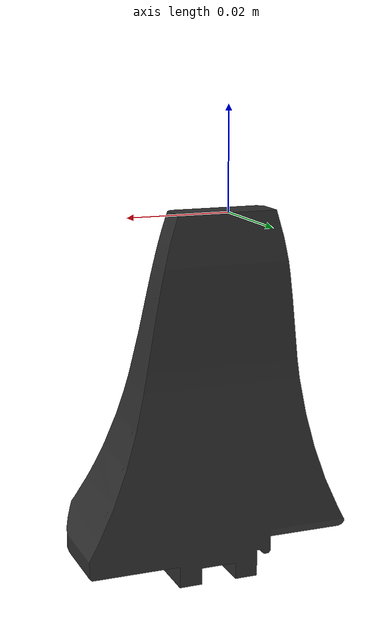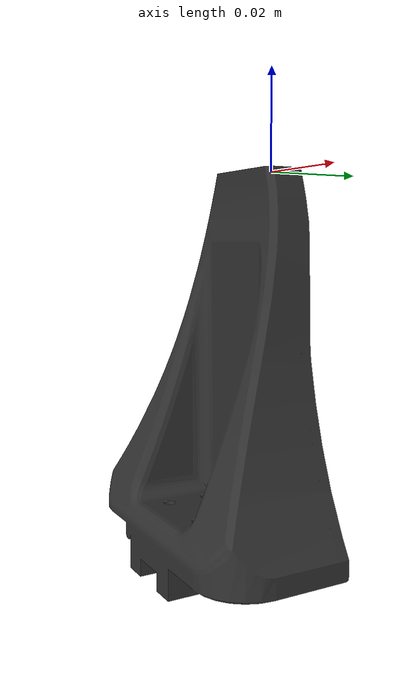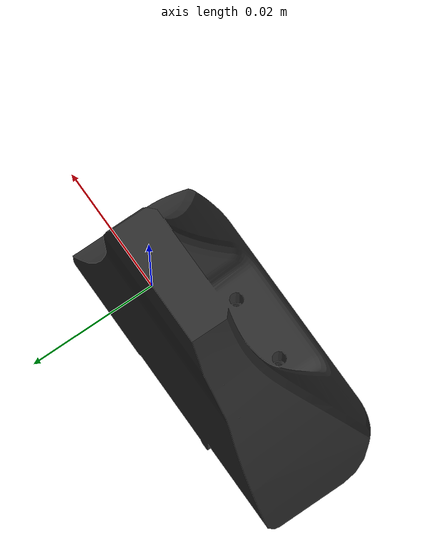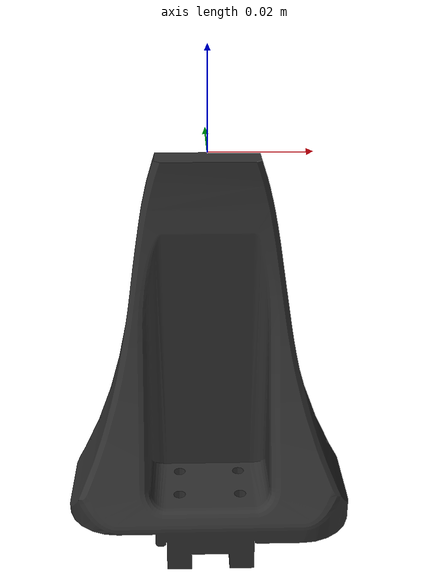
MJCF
<mujoco model="link7">
  <default>
    <default class="visual">
      <geom group="2" type="mesh" contype="0" conaffinity="0"/>
    </default>
    <default class="collision">
      <geom group="3" type="mesh"/>
    </default>
  </default>
  <asset>
    <material name="grey_metal.004" specular="0.5" shininess="0.09604875199999999" rgba="0.191349 0.191349 0.191349 1.000000"/>
    <mesh file="link7.obj"/>
    <mesh file="link7_collision_0.obj"/>
    <mesh file="link7_collision_1.obj"/>
    <mesh file="link7_collision_2.obj"/>
  </asset>
  <worldbody>
    <body name="link7">
      <geom material="grey_metal.004" mesh="link7" class="visual"/>
      <geom mesh="link7_collision_0" rgba="0.5394952773023776 0.23370841388636587 0.8957580748404443 1" class="collision"/>
      <geom mesh="link7_collision_1" rgba="0.4925654831426002 0.2073507864011005 0.5170932975876863 1" class="collision"/>
      <geom mesh="link7_collision_2" rgba="0.5089419534002781 0.46680752834490724 0.792060602614809 1" class="collision"/>
    </body>
  </worldbody>
</mujoco>
